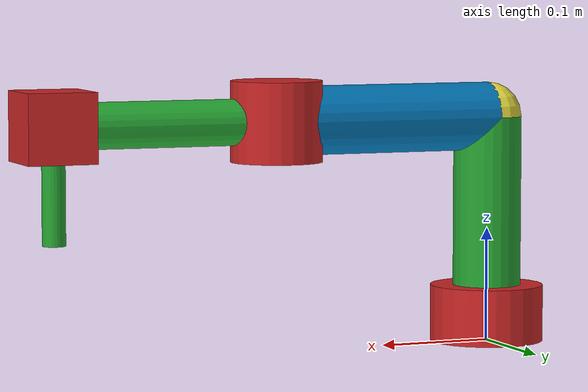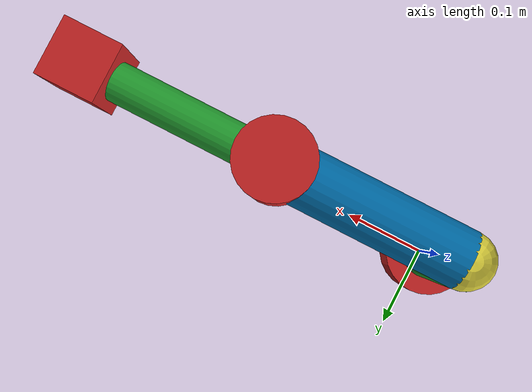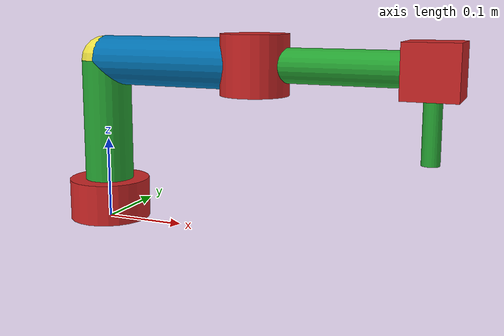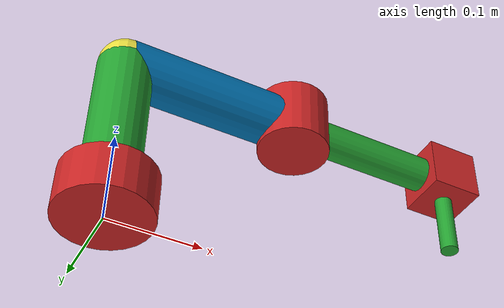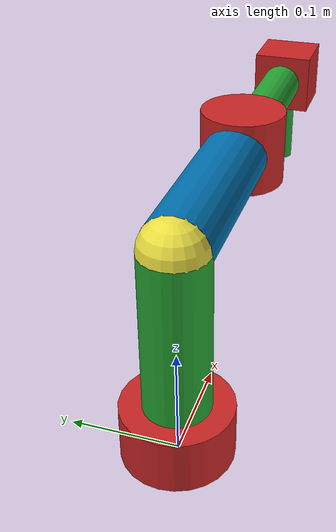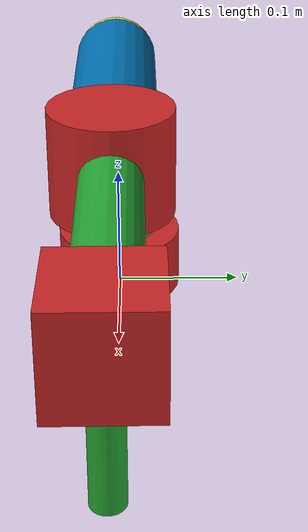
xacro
<?xml version='1.0'?>
<!-- Density of Aluminium 2710 kg/m3 -->
<!-- Density of Plastic 970 kg/m3 -->
<robot xmlns:xacro="http://www.ros.org/wiki/xacro" name = "SCARA_T7">
  <xacro:property name="PI" value="3.14159" />
  <xacro:macro name="link_cylinder" params="density rad len xyz:='0 0 0' rpy:='0 0 0'" >
    <inertial>
      <origin xyz="${xyz}" rpy="${rpy}"/>
      <mass value="${PI*rad*rad*len*density}" />
      <inertia ixx="${PI*rad*rad*len*density*(3.0*rad**3+len**2)/12.0 }" ixy="0.0" ixz="0.0"
               iyy="${PI*rad*rad*len*density*(3.0*rad**3+len**2)/12.0 }" iyz="0.0"
               izz="${PI*rad*rad*len*density*(3.0*rad**3+len**2)/12.0 }" />
    </inertial>

    <visual>
      <origin xyz="${xyz}" rpy="${rpy}"/>
      <geometry>
        <cylinder radius="${rad}" length="${len}"/>
      </geometry>
    </visual>

    <collision>
      <origin xyz="${xyz}" rpy="${rpy}"/>
      <geometry>
        <cylinder radius="${rad}" length="${len}"/>
      </geometry>
    </collision>

  </xacro:macro>

  <xacro:macro name="link_sphere" params="density rad xyz:='0 0 0' rpy:='0 0 0'" >

    <inertial>
      <origin xyz="${xyz}" rpy="${rpy}"/>
      <mass value="${4/3*PI*rad**3*density}" />
      <inertia ixx="${2*4/3*PI*rad**3*density*rad**2/5.0}" ixy="0.0" ixz="0.0"
               iyy="${2*4/3*PI*rad**3*density*rad**2/5.0}" iyz="0.0"
               izz="${2*4/3*PI*rad**3*density*rad**2/5.0}" />
    </inertial>

    <visual>
      <origin xyz="${xyz}" rpy="${rpy}"/>
      <geometry>
        <sphere radius="${rad}" />
      </geometry>
    </visual>

    <collision>
      <origin xyz="${xyz}" rpy="${rpy}"/>
      <geometry>
        <sphere radius="${rad}" />
      </geometry>
    </collision>

  </xacro:macro>

  <xacro:macro name="link_cube" params="density len xyz:='0 0 0' rpy:='0 0 0'" >

    <inertial>
      <origin xyz="${xyz}" rpy="${rpy}"/>
      <mass value="${len**3*density}" />
      <inertia ixx="${len**3*density*len**2/6.0}" ixy="0.0" ixz="0.0"
               iyy="${len**3*density*len**2/6.0}" iyz="0.0"
               izz="${len**3*density*len**2/6.0}" />
    </inertial>

    <visual>
      <origin xyz="${xyz}" rpy="${rpy}"/>
      <geometry>
        <box size = "${len} ${len} ${len}" />
      </geometry>
    </visual>

    <collision>
      <origin xyz="${xyz}" rpy="${rpy}"/>
      <geometry>
        <box size = "${len} ${len} ${len}" />
      </geometry>
    </collision>

  </xacro:macro>

  <link name="world"/>

  <joint name="Joint_0" type="fixed">
    <parent link="world"/>
    <child link="Link_0"/>
    <origin xyz="0 0 0" rpy="0 0 0"/>
  </joint>

  <link name = "Link_0">
    <xacro:link_cylinder density="2710" rad="0.05" len= "0.05" xyz="0 0 0.025" rpy="0 0 0"/>
  </link>

  <joint name="Joint_1" type="revolute">
    <parent link="Link_0"/>
    <child link="Link_1"/>
    <origin xyz="0 0 0.05" rpy="0 0 0"/>
    <limit effort="30.0" lower="-${PI/2}" upper="${PI/2}" velocity="5.0"/>
    <axis xyz="0 0 1"/>
    <hardwareInterface>hardware_interface/EffortJointInterface</hardwareInterface>
  </joint>

  <link name = "Link_1">
  	<xacro:link_cylinder density="2710" rad="0.03" len= "0.15" xyz="0 0 0.075" rpy="0 0 0"/>
  </link>

  <joint name="Joint_1A" type="fixed">
    <parent link="Link_1"/>
    <child link="Link_1B"/>
    <origin xyz="0 0 0.15" rpy="0 0 0"/>
  </joint>

  <link name = "Link_1B">
  	<xacro:link_sphere density="970" rad="0.03" xyz="0 0 0" rpy="0 0 0"/>
  </link>

  <joint name="Joint_1B" type="fixed">
    <parent link="Link_1B"/>
    <child link="Link_1C"/>
    <origin xyz="0 0 0" rpy="0 0 0"/>
  </joint>

  <link name = "Link_1C">
  	<xacro:link_cylinder density="2710" rad="0.03" len= "0.2" xyz="0.1 0 0" rpy="0 ${PI/2} 0"/>
  </link>

  <joint name="Joint_1C" type="revolute">
    <parent link="Link_1C"/>
    <child link="Link_1D"/>
    <origin xyz="0.2 0 0" rpy="0 0 0"/>
    <limit effort="30.0" lower="0" upper="0" velocity="5.0"/>
    <axis xyz="0 0 1"/>
  </joint>

  <link name = "Link_1D">
  	<xacro:link_cylinder density="970" rad="0.04" len= "0.07" xyz="0 0 0" rpy="0 0 0"/>
  </link>

  <joint name="Joint_2" type="revolute">
    <parent link="Link_1D"/>
    <child link="Link_2"/>
    <origin xyz="0 0 0" rpy="0 0 0"/>
    <limit effort="30.0" lower="-${3*PI/4}" upper="${3*PI/4}" velocity="5.0"/>
    <axis xyz="0 0 1"/>
    <hardwareInterface>hardware_interface/EffortJointInterface</hardwareInterface>
  </joint>

  <link name = "Link_2">
  	<xacro:link_cylinder density="2710" rad="0.02" len= "0.2" xyz="0.1 0 0" rpy="0 ${PI/2} 0"/>
  </link>

  <joint name="Joint_2A" type="revolute">
    <parent link="Link_2"/>
    <child link="Link_2A"/>
    <origin xyz="0.2 0 0" rpy="${PI} 0 0"/>
    <limit effort="30.0" lower="0" upper="0" velocity="5.0"/>
    <axis xyz="0 0 1"/>
  </joint>

  <link name = "Link_2A">
  	<xacro:link_cube density="970" len= "0.06" xyz="0 0 0" rpy="0 0 0"/>
  </link>

  <joint name="Joint_3" type="prismatic">
    <parent link="Link_2A"/>
    <child link="Link_3"/>
    <origin xyz="0 0 0" rpy="0 0 0"/>
    <limit effort="30.0" lower="-0.03" upper="0.03" velocity="5.0"/>
    <axis xyz="0 0 1"/>
    <hardwareInterface>hardware_interface/EffortJointInterface</hardwareInterface>
  </joint>

  <link name = "Link_3">
  	<xacro:link_cylinder density="2710" rad="0.01" len= "0.1" xyz="0 0 0.05" rpy="0 0 0"/>
  </link>

  <gazebo reference="Link_0">
    <material>Gazebo/Red</material>
  </gazebo>
  <gazebo reference="Link_1">
    <material>Gazebo/Green</material>
  </gazebo>
  <gazebo reference="Link_1D">
    <material>Gazebo/Red</material>
  </gazebo>
  <gazebo reference="Link_2">
    <material>Gazebo/Green</material>
  </gazebo>
  <gazebo reference="Link_2A">
    <material>Gazebo/Red</material>
  </gazebo>
  <gazebo reference="Link_3">
    <material>Gazebo/Green</material>
  </gazebo>

  <!-- Plugin for the controller -->
  <gazebo>
      <plugin filename="libgazebo_ros_control.so" name="gazebo_ros_control">
        <robotNamespace>/SCARA_T7</robotNamespace>
        <robotSimType>gazebo_ros_control/DefaultRobotHWSim</robotSimType>
        <legacyModeNS>true</legacyModeNS>
      </plugin>
  </gazebo>

  <transmission name="tran1">
    <type>transmission_interface/SimpleTransmission</type>
    <joint name="Joint_1">
      <hardwareInterface>hardware_interface/EffortJointInterface</hardwareInterface>
    </joint>
    <actuator name="Motor_1">
      <hardwareInterface>hardware_interface/EffortJointInterface</hardwareInterface>
      <mechanicalReduction>1</mechanicalReduction>
    </actuator>
  </transmission>

  <transmission name="tran2">
    <type>transmission_interface/SimpleTransmission</type>
    <joint name="Joint_2">
      <hardwareInterface>hardware_interface/EffortJointInterface</hardwareInterface>
    </joint>
    <actuator name="Motor_2">
      <hardwareInterface>hardware_interface/EffortJointInterface</hardwareInterface>
      <mechanicalReduction>1</mechanicalReduction>
    </actuator>
  </transmission>

  <transmission name="tran3">
    <type>transmission_interface/SimpleTransmission</type>
    <joint name="Joint_3">
      <hardwareInterface>hardware_interface/EffortJointInterface</hardwareInterface>
    </joint>
    <actuator name="Motor_3">
      <hardwareInterface>hardware_interface/EffortJointInterface</hardwareInterface>
      <mechanicalReduction>1</mechanicalReduction>
    </actuator>
  </transmission>
</robot>
